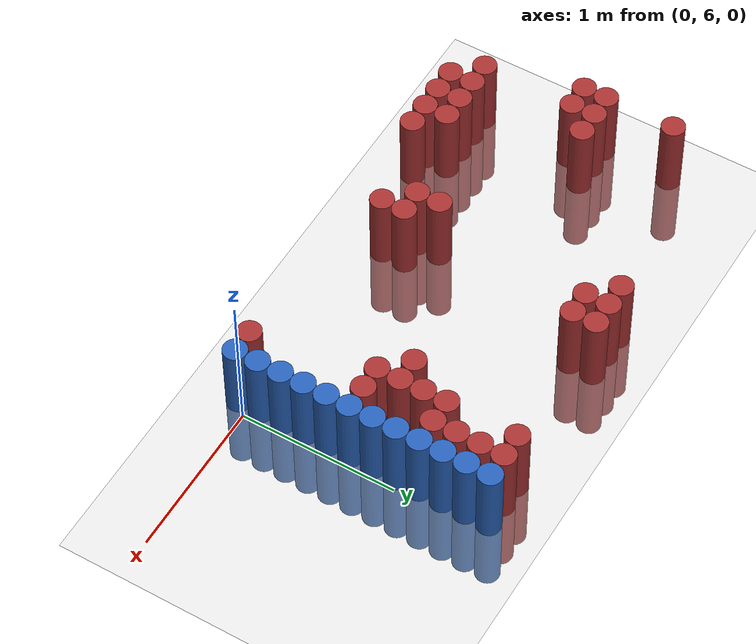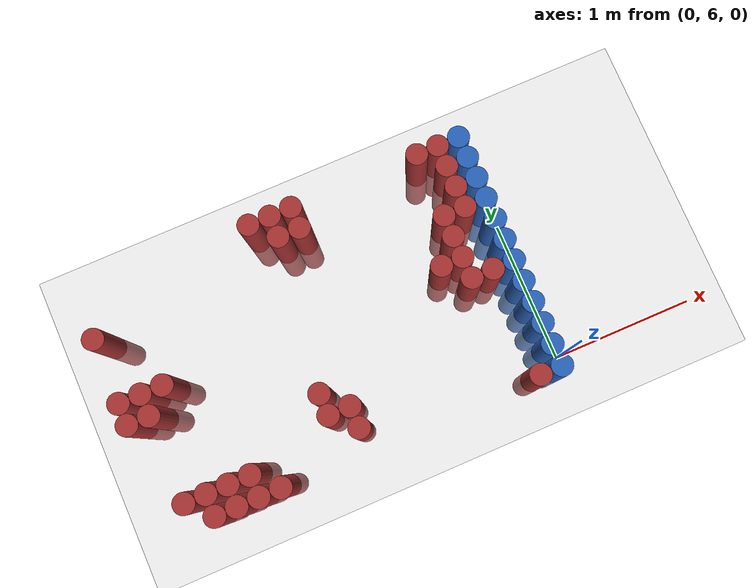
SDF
<sdf version="1.6">
 <world name="default">
  <model name="ground_plane">
   <static>1</static>
   <link name="link">
    <collision name="collision">
     <geometry><plane><normal>0 0 1</normal><size>100 100</size></plane></geometry>
     <surface><friction><ode><mu>100</mu><mu2>50</mu2></ode></friction></surface>
    </collision>
    <visual name="visual">
     <cast_shadows>0</cast_shadows>
     <geometry><plane><normal>0 0 1</normal><size>100 100</size></plane></geometry>
     <material>
      <script><uri>file://media/materials/scripts/gazebo.material</uri><name>Gazebo/Grey</name></script>
     </material>
    </visual>
   </link>
  </model>
  <model name="unit_cylinder_221">
   <static>1</static>
   <pose>-2.775000 6.675000 0.000000 0.000000 0.000000 0.000000</pose>
   <link name="link">
    <inertial>
     <mass>1</mass>
     <inertia><ixx>0.145833</ixx><ixy>0</ixy><ixz>0</ixz><iyy>0.145833</iyy><iyz>0</iyz><izz>0.125</izz></inertia>
    </inertial>
    <collision name="collision">
     <geometry><cylinder><radius>0.075000</radius><length>1</length></cylinder></geometry>
    </collision>
    <visual name="visual">
     <geometry><cylinder><radius>0.075000</radius><length>1</length></cylinder></geometry>
     <material>
      <ambient>0.648000 0.192000 0.192000 1</ambient>
      <diffuse>0.648000 0.192000 0.192000 1</diffuse>
     </material>
     <material>
      <script><name>Gazebo/Grey</name><uri>file://media/materials/scripts/gazebo.material</uri></script>
     </material>
    </visual>
   </link>
  </model>
  <model name="unit_cylinder_222">
   <static>1</static>
   <pose>-2.775000 6.825000 0.000000 0.000000 0.000000 0.000000</pose>
   <link name="link">
    <inertial>
     <mass>1</mass>
     <inertia><ixx>0.145833</ixx><ixy>0</ixy><ixz>0</ixz><iyy>0.145833</iyy><iyz>0</iyz><izz>0.125</izz></inertia>
    </inertial>
    <collision name="collision">
     <geometry><cylinder><radius>0.075000</radius><length>1</length></cylinder></geometry>
    </collision>
    <visual name="visual">
     <geometry><cylinder><radius>0.075000</radius><length>1</length></cylinder></geometry>
     <material>
      <ambient>0.648000 0.192000 0.192000 1</ambient>
      <diffuse>0.648000 0.192000 0.192000 1</diffuse>
     </material>
     <material>
      <script><name>Gazebo/Grey</name><uri>file://media/materials/scripts/gazebo.material</uri></script>
     </material>
    </visual>
   </link>
  </model>
  <model name="unit_cylinder_223">
   <static>1</static>
   <pose>-2.775000 7.275000 0.000000 0.000000 0.000000 0.000000</pose>
   <link name="link">
    <inertial>
     <mass>1</mass>
     <inertia><ixx>0.145833</ixx><ixy>0</ixy><ixz>0</ixz><iyy>0.145833</iyy><iyz>0</iyz><izz>0.125</izz></inertia>
    </inertial>
    <collision name="collision">
     <geometry><cylinder><radius>0.075000</radius><length>1</length></cylinder></geometry>
    </collision>
    <visual name="visual">
     <geometry><cylinder><radius>0.075000</radius><length>1</length></cylinder></geometry>
     <material>
      <ambient>0.648000 0.192000 0.192000 1</ambient>
      <diffuse>0.648000 0.192000 0.192000 1</diffuse>
     </material>
     <material>
      <script><name>Gazebo/Grey</name><uri>file://media/materials/scripts/gazebo.material</uri></script>
     </material>
    </visual>
   </link>
  </model>
  <model name="unit_cylinder_225">
   <static>1</static>
   <pose>-2.625000 6.075000 0.000000 0.000000 0.000000 0.000000</pose>
   <link name="link">
    <inertial>
     <mass>1</mass>
     <inertia><ixx>0.145833</ixx><ixy>0</ixy><ixz>0</ixz><iyy>0.145833</iyy><iyz>0</iyz><izz>0.125</izz></inertia>
    </inertial>
    <collision name="collision">
     <geometry><cylinder><radius>0.075000</radius><length>1</length></cylinder></geometry>
    </collision>
    <visual name="visual">
     <geometry><cylinder><radius>0.075000</radius><length>1</length></cylinder></geometry>
     <material>
      <ambient>0.648000 0.192000 0.192000 1</ambient>
      <diffuse>0.648000 0.192000 0.192000 1</diffuse>
     </material>
     <material>
      <script><name>Gazebo/Grey</name><uri>file://media/materials/scripts/gazebo.material</uri></script>
     </material>
    </visual>
   </link>
  </model>
  <model name="unit_cylinder_226">
   <static>1</static>
   <pose>-2.625000 6.675000 0.000000 0.000000 0.000000 0.000000</pose>
   <link name="link">
    <inertial>
     <mass>1</mass>
     <inertia><ixx>0.145833</ixx><ixy>0</ixy><ixz>0</ixz><iyy>0.145833</iyy><iyz>0</iyz><izz>0.125</izz></inertia>
    </inertial>
    <collision name="collision">
     <geometry><cylinder><radius>0.075000</radius><length>1</length></cylinder></geometry>
    </collision>
    <visual name="visual">
     <geometry><cylinder><radius>0.075000</radius><length>1</length></cylinder></geometry>
     <material>
      <ambient>0.648000 0.192000 0.192000 1</ambient>
      <diffuse>0.648000 0.192000 0.192000 1</diffuse>
     </material>
     <material>
      <script><name>Gazebo/Grey</name><uri>file://media/materials/scripts/gazebo.material</uri></script>
     </material>
    </visual>
   </link>
  </model>
  <model name="unit_cylinder_227">
   <static>1</static>
   <pose>-2.625000 6.825000 0.000000 0.000000 0.000000 0.000000</pose>
   <link name="link">
    <inertial>
     <mass>1</mass>
     <inertia><ixx>0.145833</ixx><ixy>0</ixy><ixz>0</ixz><iyy>0.145833</iyy><iyz>0</iyz><izz>0.125</izz></inertia>
    </inertial>
    <collision name="collision">
     <geometry><cylinder><radius>0.075000</radius><length>1</length></cylinder></geometry>
    </collision>
    <visual name="visual">
     <geometry><cylinder><radius>0.075000</radius><length>1</length></cylinder></geometry>
     <material>
      <ambient>0.648000 0.192000 0.192000 1</ambient>
      <diffuse>0.648000 0.192000 0.192000 1</diffuse>
     </material>
     <material>
      <script><name>Gazebo/Grey</name><uri>file://media/materials/scripts/gazebo.material</uri></script>
     </material>
    </visual>
   </link>
  </model>
  <model name="unit_cylinder_228">
   <static>1</static>
   <pose>-2.475000 5.925000 0.000000 0.000000 0.000000 0.000000</pose>
   <link name="link">
    <inertial>
     <mass>1</mass>
     <inertia><ixx>0.145833</ixx><ixy>0</ixy><ixz>0</ixz><iyy>0.145833</iyy><iyz>0</iyz><izz>0.125</izz></inertia>
    </inertial>
    <collision name="collision">
     <geometry><cylinder><radius>0.075000</radius><length>1</length></cylinder></geometry>
    </collision>
    <visual name="visual">
     <geometry><cylinder><radius>0.075000</radius><length>1</length></cylinder></geometry>
     <material>
      <ambient>0.648000 0.192000 0.192000 1</ambient>
      <diffuse>0.648000 0.192000 0.192000 1</diffuse>
     </material>
     <material>
      <script><name>Gazebo/Grey</name><uri>file://media/materials/scripts/gazebo.material</uri></script>
     </material>
    </visual>
   </link>
  </model>
  <model name="unit_cylinder_229">
   <static>1</static>
   <pose>-2.475000 6.075000 0.000000 0.000000 0.000000 0.000000</pose>
   <link name="link">
    <inertial>
     <mass>1</mass>
     <inertia><ixx>0.145833</ixx><ixy>0</ixy><ixz>0</ixz><iyy>0.145833</iyy><iyz>0</iyz><izz>0.125</izz></inertia>
    </inertial>
    <collision name="collision">
     <geometry><cylinder><radius>0.075000</radius><length>1</length></cylinder></geometry>
    </collision>
    <visual name="visual">
     <geometry><cylinder><radius>0.075000</radius><length>1</length></cylinder></geometry>
     <material>
      <ambient>0.648000 0.192000 0.192000 1</ambient>
      <diffuse>0.648000 0.192000 0.192000 1</diffuse>
     </material>
     <material>
      <script><name>Gazebo/Grey</name><uri>file://media/materials/scripts/gazebo.material</uri></script>
     </material>
    </visual>
   </link>
  </model>
  <model name="unit_cylinder_230">
   <static>1</static>
   <pose>-2.475000 6.825000 0.000000 0.000000 0.000000 0.000000</pose>
   <link name="link">
    <inertial>
     <mass>1</mass>
     <inertia><ixx>0.145833</ixx><ixy>0</ixy><ixz>0</ixz><iyy>0.145833</iyy><iyz>0</iyz><izz>0.125</izz></inertia>
    </inertial>
    <collision name="collision">
     <geometry><cylinder><radius>0.075000</radius><length>1</length></cylinder></geometry>
    </collision>
    <visual name="visual">
     <geometry><cylinder><radius>0.075000</radius><length>1</length></cylinder></geometry>
     <material>
      <ambient>0.648000 0.192000 0.192000 1</ambient>
      <diffuse>0.648000 0.192000 0.192000 1</diffuse>
     </material>
     <material>
      <script><name>Gazebo/Grey</name><uri>file://media/materials/scripts/gazebo.material</uri></script>
     </material>
    </visual>
   </link>
  </model>
  <model name="unit_cylinder_233">
   <static>1</static>
   <pose>-2.325000 5.925000 0.000000 0.000000 0.000000 0.000000</pose>
   <link name="link">
    <inertial>
     <mass>1</mass>
     <inertia><ixx>0.145833</ixx><ixy>0</ixy><ixz>0</ixz><iyy>0.145833</iyy><iyz>0</iyz><izz>0.125</izz></inertia>
    </inertial>
    <collision name="collision">
     <geometry><cylinder><radius>0.075000</radius><length>1</length></cylinder></geometry>
    </collision>
    <visual name="visual">
     <geometry><cylinder><radius>0.075000</radius><length>1</length></cylinder></geometry>
     <material>
      <ambient>0.648000 0.192000 0.192000 1</ambient>
      <diffuse>0.648000 0.192000 0.192000 1</diffuse>
     </material>
     <material>
      <script><name>Gazebo/Grey</name><uri>file://media/materials/scripts/gazebo.material</uri></script>
     </material>
    </visual>
   </link>
  </model>
  <model name="unit_cylinder_234">
   <static>1</static>
   <pose>-2.325000 6.075000 0.000000 0.000000 0.000000 0.000000</pose>
   <link name="link">
    <inertial>
     <mass>1</mass>
     <inertia><ixx>0.145833</ixx><ixy>0</ixy><ixz>0</ixz><iyy>0.145833</iyy><iyz>0</iyz><izz>0.125</izz></inertia>
    </inertial>
    <collision name="collision">
     <geometry><cylinder><radius>0.075000</radius><length>1</length></cylinder></geometry>
    </collision>
    <visual name="visual">
     <geometry><cylinder><radius>0.075000</radius><length>1</length></cylinder></geometry>
     <material>
      <ambient>0.648000 0.192000 0.192000 1</ambient>
      <diffuse>0.648000 0.192000 0.192000 1</diffuse>
     </material>
     <material>
      <script><name>Gazebo/Grey</name><uri>file://media/materials/scripts/gazebo.material</uri></script>
     </material>
    </visual>
   </link>
  </model>
  <model name="unit_cylinder_239">
   <static>1</static>
   <pose>-2.175000 5.925000 0.000000 0.000000 0.000000 0.000000</pose>
   <link name="link">
    <inertial>
     <mass>1</mass>
     <inertia><ixx>0.145833</ixx><ixy>0</ixy><ixz>0</ixz><iyy>0.145833</iyy><iyz>0</iyz><izz>0.125</izz></inertia>
    </inertial>
    <collision name="collision">
     <geometry><cylinder><radius>0.075000</radius><length>1</length></cylinder></geometry>
    </collision>
    <visual name="visual">
     <geometry><cylinder><radius>0.075000</radius><length>1</length></cylinder></geometry>
     <material>
      <ambient>0.648000 0.192000 0.192000 1</ambient>
      <diffuse>0.648000 0.192000 0.192000 1</diffuse>
     </material>
     <material>
      <script><name>Gazebo/Grey</name><uri>file://media/materials/scripts/gazebo.material</uri></script>
     </material>
    </visual>
   </link>
  </model>
  <model name="unit_cylinder_240">
   <static>1</static>
   <pose>-2.175000 6.075000 0.000000 0.000000 0.000000 0.000000</pose>
   <link name="link">
    <inertial>
     <mass>1</mass>
     <inertia><ixx>0.145833</ixx><ixy>0</ixy><ixz>0</ixz><iyy>0.145833</iyy><iyz>0</iyz><izz>0.125</izz></inertia>
    </inertial>
    <collision name="collision">
     <geometry><cylinder><radius>0.075000</radius><length>1</length></cylinder></geometry>
    </collision>
    <visual name="visual">
     <geometry><cylinder><radius>0.075000</radius><length>1</length></cylinder></geometry>
     <material>
      <ambient>0.648000 0.192000 0.192000 1</ambient>
      <diffuse>0.648000 0.192000 0.192000 1</diffuse>
     </material>
     <material>
      <script><name>Gazebo/Grey</name><uri>file://media/materials/scripts/gazebo.material</uri></script>
     </material>
    </visual>
   </link>
  </model>
  <model name="unit_cylinder_243">
   <static>1</static>
   <pose>-2.025000 5.925000 0.000000 0.000000 0.000000 0.000000</pose>
   <link name="link">
    <inertial>
     <mass>1</mass>
     <inertia><ixx>0.145833</ixx><ixy>0</ixy><ixz>0</ixz><iyy>0.145833</iyy><iyz>0</iyz><izz>0.125</izz></inertia>
    </inertial>
    <collision name="collision">
     <geometry><cylinder><radius>0.075000</radius><length>1</length></cylinder></geometry>
    </collision>
    <visual name="visual">
     <geometry><cylinder><radius>0.075000</radius><length>1</length></cylinder></geometry>
     <material>
      <ambient>0.648000 0.192000 0.192000 1</ambient>
      <diffuse>0.648000 0.192000 0.192000 1</diffuse>
     </material>
     <material>
      <script><name>Gazebo/Grey</name><uri>file://media/materials/scripts/gazebo.material</uri></script>
     </material>
    </visual>
   </link>
  </model>
  <model name="unit_cylinder_245">
   <static>1</static>
   <pose>-1.575000 6.225000 0.000000 0.000000 0.000000 0.000000</pose>
   <link name="link">
    <inertial>
     <mass>1</mass>
     <inertia><ixx>0.145833</ixx><ixy>0</ixy><ixz>0</ixz><iyy>0.145833</iyy><iyz>0</iyz><izz>0.125</izz></inertia>
    </inertial>
    <collision name="collision">
     <geometry><cylinder><radius>0.075000</radius><length>1</length></cylinder></geometry>
    </collision>
    <visual name="visual">
     <geometry><cylinder><radius>0.075000</radius><length>1</length></cylinder></geometry>
     <material>
      <ambient>0.648000 0.192000 0.192000 1</ambient>
      <diffuse>0.648000 0.192000 0.192000 1</diffuse>
     </material>
     <material>
      <script><name>Gazebo/Grey</name><uri>file://media/materials/scripts/gazebo.material</uri></script>
     </material>
    </visual>
   </link>
  </model>
  <model name="unit_cylinder_246">
   <static>1</static>
   <pose>-1.575000 6.375000 0.000000 0.000000 0.000000 0.000000</pose>
   <link name="link">
    <inertial>
     <mass>1</mass>
     <inertia><ixx>0.145833</ixx><ixy>0</ixy><ixz>0</ixz><iyy>0.145833</iyy><iyz>0</iyz><izz>0.125</izz></inertia>
    </inertial>
    <collision name="collision">
     <geometry><cylinder><radius>0.075000</radius><length>1</length></cylinder></geometry>
    </collision>
    <visual name="visual">
     <geometry><cylinder><radius>0.075000</radius><length>1</length></cylinder></geometry>
     <material>
      <ambient>0.648000 0.192000 0.192000 1</ambient>
      <diffuse>0.648000 0.192000 0.192000 1</diffuse>
     </material>
     <material>
      <script><name>Gazebo/Grey</name><uri>file://media/materials/scripts/gazebo.material</uri></script>
     </material>
    </visual>
   </link>
  </model>
  <model name="unit_cylinder_247">
   <static>1</static>
   <pose>-1.575000 7.575000 0.000000 0.000000 0.000000 0.000000</pose>
   <link name="link">
    <inertial>
     <mass>1</mass>
     <inertia><ixx>0.145833</ixx><ixy>0</ixy><ixz>0</ixz><iyy>0.145833</iyy><iyz>0</iyz><izz>0.125</izz></inertia>
    </inertial>
    <collision name="collision">
     <geometry><cylinder><radius>0.075000</radius><length>1</length></cylinder></geometry>
    </collision>
    <visual name="visual">
     <geometry><cylinder><radius>0.075000</radius><length>1</length></cylinder></geometry>
     <material>
      <ambient>0.648000 0.192000 0.192000 1</ambient>
      <diffuse>0.648000 0.192000 0.192000 1</diffuse>
     </material>
     <material>
      <script><name>Gazebo/Grey</name><uri>file://media/materials/scripts/gazebo.material</uri></script>
     </material>
    </visual>
   </link>
  </model>
  <model name="unit_cylinder_248">
   <static>1</static>
   <pose>-1.425000 6.075000 0.000000 0.000000 0.000000 0.000000</pose>
   <link name="link">
    <inertial>
     <mass>1</mass>
     <inertia><ixx>0.145833</ixx><ixy>0</ixy><ixz>0</ixz><iyy>0.145833</iyy><iyz>0</iyz><izz>0.125</izz></inertia>
    </inertial>
    <collision name="collision">
     <geometry><cylinder><radius>0.075000</radius><length>1</length></cylinder></geometry>
    </collision>
    <visual name="visual">
     <geometry><cylinder><radius>0.075000</radius><length>1</length></cylinder></geometry>
     <material>
      <ambient>0.648000 0.192000 0.192000 1</ambient>
      <diffuse>0.648000 0.192000 0.192000 1</diffuse>
     </material>
     <material>
      <script><name>Gazebo/Grey</name><uri>file://media/materials/scripts/gazebo.material</uri></script>
     </material>
    </visual>
   </link>
  </model>
  <model name="unit_cylinder_249">
   <static>1</static>
   <pose>-1.425000 6.225000 0.000000 0.000000 0.000000 0.000000</pose>
   <link name="link">
    <inertial>
     <mass>1</mass>
     <inertia><ixx>0.145833</ixx><ixy>0</ixy><ixz>0</ixz><iyy>0.145833</iyy><iyz>0</iyz><izz>0.125</izz></inertia>
    </inertial>
    <collision name="collision">
     <geometry><cylinder><radius>0.075000</radius><length>1</length></cylinder></geometry>
    </collision>
    <visual name="visual">
     <geometry><cylinder><radius>0.075000</radius><length>1</length></cylinder></geometry>
     <material>
      <ambient>0.648000 0.192000 0.192000 1</ambient>
      <diffuse>0.648000 0.192000 0.192000 1</diffuse>
     </material>
     <material>
      <script><name>Gazebo/Grey</name><uri>file://media/materials/scripts/gazebo.material</uri></script>
     </material>
    </visual>
   </link>
  </model>
  <model name="unit_cylinder_250">
   <static>1</static>
   <pose>-1.425000 7.425000 0.000000 0.000000 0.000000 0.000000</pose>
   <link name="link">
    <inertial>
     <mass>1</mass>
     <inertia><ixx>0.145833</ixx><ixy>0</ixy><ixz>0</ixz><iyy>0.145833</iyy><iyz>0</iyz><izz>0.125</izz></inertia>
    </inertial>
    <collision name="collision">
     <geometry><cylinder><radius>0.075000</radius><length>1</length></cylinder></geometry>
    </collision>
    <visual name="visual">
     <geometry><cylinder><radius>0.075000</radius><length>1</length></cylinder></geometry>
     <material>
      <ambient>0.648000 0.192000 0.192000 1</ambient>
      <diffuse>0.648000 0.192000 0.192000 1</diffuse>
     </material>
     <material>
      <script><name>Gazebo/Grey</name><uri>file://media/materials/scripts/gazebo.material</uri></script>
     </material>
    </visual>
   </link>
  </model>
  <model name="unit_cylinder_251">
   <static>1</static>
   <pose>-1.425000 7.575000 0.000000 0.000000 0.000000 0.000000</pose>
   <link name="link">
    <inertial>
     <mass>1</mass>
     <inertia><ixx>0.145833</ixx><ixy>0</ixy><ixz>0</ixz><iyy>0.145833</iyy><iyz>0</iyz><izz>0.125</izz></inertia>
    </inertial>
    <collision name="collision">
     <geometry><cylinder><radius>0.075000</radius><length>1</length></cylinder></geometry>
    </collision>
    <visual name="visual">
     <geometry><cylinder><radius>0.075000</radius><length>1</length></cylinder></geometry>
     <material>
      <ambient>0.648000 0.192000 0.192000 1</ambient>
      <diffuse>0.648000 0.192000 0.192000 1</diffuse>
     </material>
     <material>
      <script><name>Gazebo/Grey</name><uri>file://media/materials/scripts/gazebo.material</uri></script>
     </material>
    </visual>
   </link>
  </model>
  <model name="unit_cylinder_253">
   <static>1</static>
   <pose>-1.275000 7.425000 0.000000 0.000000 0.000000 0.000000</pose>
   <link name="link">
    <inertial>
     <mass>1</mass>
     <inertia><ixx>0.145833</ixx><ixy>0</ixy><ixz>0</ixz><iyy>0.145833</iyy><iyz>0</iyz><izz>0.125</izz></inertia>
    </inertial>
    <collision name="collision">
     <geometry><cylinder><radius>0.075000</radius><length>1</length></cylinder></geometry>
    </collision>
    <visual name="visual">
     <geometry><cylinder><radius>0.075000</radius><length>1</length></cylinder></geometry>
     <material>
      <ambient>0.648000 0.192000 0.192000 1</ambient>
      <diffuse>0.648000 0.192000 0.192000 1</diffuse>
     </material>
     <material>
      <script><name>Gazebo/Grey</name><uri>file://media/materials/scripts/gazebo.material</uri></script>
     </material>
    </visual>
   </link>
  </model>
  <model name="unit_cylinder_254">
   <static>1</static>
   <pose>-1.275000 7.575000 0.000000 0.000000 0.000000 0.000000</pose>
   <link name="link">
    <inertial>
     <mass>1</mass>
     <inertia><ixx>0.145833</ixx><ixy>0</ixy><ixz>0</ixz><iyy>0.145833</iyy><iyz>0</iyz><izz>0.125</izz></inertia>
    </inertial>
    <collision name="collision">
     <geometry><cylinder><radius>0.075000</radius><length>1</length></cylinder></geometry>
    </collision>
    <visual name="visual">
     <geometry><cylinder><radius>0.075000</radius><length>1</length></cylinder></geometry>
     <material>
      <ambient>0.648000 0.192000 0.192000 1</ambient>
      <diffuse>0.648000 0.192000 0.192000 1</diffuse>
     </material>
     <material>
      <script><name>Gazebo/Grey</name><uri>file://media/materials/scripts/gazebo.material</uri></script>
     </material>
    </visual>
   </link>
  </model>
  <model name="unit_cylinder_267">
   <static>1</static>
   <pose>-0.525000 6.825000 0.000000 0.000000 0.000000 0.000000</pose>
   <link name="link">
    <inertial>
     <mass>1</mass>
     <inertia><ixx>0.145833</ixx><ixy>0</ixy><ixz>0</ixz><iyy>0.145833</iyy><iyz>0</iyz><izz>0.125</izz></inertia>
    </inertial>
    <collision name="collision">
     <geometry><cylinder><radius>0.075000</radius><length>1</length></cylinder></geometry>
    </collision>
    <visual name="visual">
     <geometry><cylinder><radius>0.075000</radius><length>1</length></cylinder></geometry>
     <material>
      <ambient>0.648000 0.192000 0.192000 1</ambient>
      <diffuse>0.648000 0.192000 0.192000 1</diffuse>
     </material>
     <material>
      <script><name>Gazebo/Grey</name><uri>file://media/materials/scripts/gazebo.material</uri></script>
     </material>
    </visual>
   </link>
  </model>
  <model name="unit_cylinder_274">
   <static>1</static>
   <pose>-0.375000 6.675000 0.000000 0.000000 0.000000 0.000000</pose>
   <link name="link">
    <inertial>
     <mass>1</mass>
     <inertia><ixx>0.145833</ixx><ixy>0</ixy><ixz>0</ixz><iyy>0.145833</iyy><iyz>0</iyz><izz>0.125</izz></inertia>
    </inertial>
    <collision name="collision">
     <geometry><cylinder><radius>0.075000</radius><length>1</length></cylinder></geometry>
    </collision>
    <visual name="visual">
     <geometry><cylinder><radius>0.075000</radius><length>1</length></cylinder></geometry>
     <material>
      <ambient>0.648000 0.192000 0.192000 1</ambient>
      <diffuse>0.648000 0.192000 0.192000 1</diffuse>
     </material>
     <material>
      <script><name>Gazebo/Grey</name><uri>file://media/materials/scripts/gazebo.material</uri></script>
     </material>
    </visual>
   </link>
  </model>
  <model name="unit_cylinder_275">
   <static>1</static>
   <pose>-0.375000 6.825000 0.000000 0.000000 0.000000 0.000000</pose>
   <link name="link">
    <inertial>
     <mass>1</mass>
     <inertia><ixx>0.145833</ixx><ixy>0</ixy><ixz>0</ixz><iyy>0.145833</iyy><iyz>0</iyz><izz>0.125</izz></inertia>
    </inertial>
    <collision name="collision">
     <geometry><cylinder><radius>0.075000</radius><length>1</length></cylinder></geometry>
    </collision>
    <visual name="visual">
     <geometry><cylinder><radius>0.075000</radius><length>1</length></cylinder></geometry>
     <material>
      <ambient>0.648000 0.192000 0.192000 1</ambient>
      <diffuse>0.648000 0.192000 0.192000 1</diffuse>
     </material>
     <material>
      <script><name>Gazebo/Grey</name><uri>file://media/materials/scripts/gazebo.material</uri></script>
     </material>
    </visual>
   </link>
  </model>
  <model name="unit_cylinder_276">
   <static>1</static>
   <pose>-0.375000 6.975000 0.000000 0.000000 0.000000 0.000000</pose>
   <link name="link">
    <inertial>
     <mass>1</mass>
     <inertia><ixx>0.145833</ixx><ixy>0</ixy><ixz>0</ixz><iyy>0.145833</iyy><iyz>0</iyz><izz>0.125</izz></inertia>
    </inertial>
    <collision name="collision">
     <geometry><cylinder><radius>0.075000</radius><length>1</length></cylinder></geometry>
    </collision>
    <visual name="visual">
     <geometry><cylinder><radius>0.075000</radius><length>1</length></cylinder></geometry>
     <material>
      <ambient>0.648000 0.192000 0.192000 1</ambient>
      <diffuse>0.648000 0.192000 0.192000 1</diffuse>
     </material>
     <material>
      <script><name>Gazebo/Grey</name><uri>file://media/materials/scripts/gazebo.material</uri></script>
     </material>
    </visual>
   </link>
  </model>
  <model name="unit_cylinder_277">
   <static>1</static>
   <pose>-0.375000 7.125000 0.000000 0.000000 0.000000 0.000000</pose>
   <link name="link">
    <inertial>
     <mass>1</mass>
     <inertia><ixx>0.145833</ixx><ixy>0</ixy><ixz>0</ixz><iyy>0.145833</iyy><iyz>0</iyz><izz>0.125</izz></inertia>
    </inertial>
    <collision name="collision">
     <geometry><cylinder><radius>0.075000</radius><length>1</length></cylinder></geometry>
    </collision>
    <visual name="visual">
     <geometry><cylinder><radius>0.075000</radius><length>1</length></cylinder></geometry>
     <material>
      <ambient>0.648000 0.192000 0.192000 1</ambient>
      <diffuse>0.648000 0.192000 0.192000 1</diffuse>
     </material>
     <material>
      <script><name>Gazebo/Grey</name><uri>file://media/materials/scripts/gazebo.material</uri></script>
     </material>
    </visual>
   </link>
  </model>
  <model name="unit_cylinder_278">
   <static>1</static>
   <pose>-0.375000 7.575000 0.000000 0.000000 0.000000 0.000000</pose>
   <link name="link">
    <inertial>
     <mass>1</mass>
     <inertia><ixx>0.145833</ixx><ixy>0</ixy><ixz>0</ixz><iyy>0.145833</iyy><iyz>0</iyz><izz>0.125</izz></inertia>
    </inertial>
    <collision name="collision">
     <geometry><cylinder><radius>0.075000</radius><length>1</length></cylinder></geometry>
    </collision>
    <visual name="visual">
     <geometry><cylinder><radius>0.075000</radius><length>1</length></cylinder></geometry>
     <material>
      <ambient>0.648000 0.192000 0.192000 1</ambient>
      <diffuse>0.648000 0.192000 0.192000 1</diffuse>
     </material>
     <material>
      <script><name>Gazebo/Grey</name><uri>file://media/materials/scripts/gazebo.material</uri></script>
     </material>
    </visual>
   </link>
  </model>
  <model name="unit_cylinder_285">
   <static>1</static>
   <pose>-0.225000 5.925000 0.000000 0.000000 0.000000 0.000000</pose>
   <link name="link">
    <inertial>
     <mass>1</mass>
     <inertia><ixx>0.145833</ixx><ixy>0</ixy><ixz>0</ixz><iyy>0.145833</iyy><iyz>0</iyz><izz>0.125</izz></inertia>
    </inertial>
    <collision name="collision">
     <geometry><cylinder><radius>0.075000</radius><length>1</length></cylinder></geometry>
    </collision>
    <visual name="visual">
     <geometry><cylinder><radius>0.075000</radius><length>1</length></cylinder></geometry>
     <material>
      <ambient>0.648000 0.192000 0.192000 1</ambient>
      <diffuse>0.648000 0.192000 0.192000 1</diffuse>
     </material>
     <material>
      <script><name>Gazebo/Grey</name><uri>file://media/materials/scripts/gazebo.material</uri></script>
     </material>
    </visual>
   </link>
  </model>
  <model name="unit_cylinder_286">
   <static>1</static>
   <pose>-0.225000 6.675000 0.000000 0.000000 0.000000 0.000000</pose>
   <link name="link">
    <inertial>
     <mass>1</mass>
     <inertia><ixx>0.145833</ixx><ixy>0</ixy><ixz>0</ixz><iyy>0.145833</iyy><iyz>0</iyz><izz>0.125</izz></inertia>
    </inertial>
    <collision name="collision">
     <geometry><cylinder><radius>0.075000</radius><length>1</length></cylinder></geometry>
    </collision>
    <visual name="visual">
     <geometry><cylinder><radius>0.075000</radius><length>1</length></cylinder></geometry>
     <material>
      <ambient>0.648000 0.192000 0.192000 1</ambient>
      <diffuse>0.648000 0.192000 0.192000 1</diffuse>
     </material>
     <material>
      <script><name>Gazebo/Grey</name><uri>file://media/materials/scripts/gazebo.material</uri></script>
     </material>
    </visual>
   </link>
  </model>
  <model name="unit_cylinder_287">
   <static>1</static>
   <pose>-0.225000 7.125000 0.000000 0.000000 0.000000 0.000000</pose>
   <link name="link">
    <inertial>
     <mass>1</mass>
     <inertia><ixx>0.145833</ixx><ixy>0</ixy><ixz>0</ixz><iyy>0.145833</iyy><iyz>0</iyz><izz>0.125</izz></inertia>
    </inertial>
    <collision name="collision">
     <geometry><cylinder><radius>0.075000</radius><length>1</length></cylinder></geometry>
    </collision>
    <visual name="visual">
     <geometry><cylinder><radius>0.075000</radius><length>1</length></cylinder></geometry>
     <material>
      <ambient>0.648000 0.192000 0.192000 1</ambient>
      <diffuse>0.648000 0.192000 0.192000 1</diffuse>
     </material>
     <material>
      <script><name>Gazebo/Grey</name><uri>file://media/materials/scripts/gazebo.material</uri></script>
     </material>
    </visual>
   </link>
  </model>
  <model name="unit_cylinder_288">
   <static>1</static>
   <pose>-0.225000 7.275000 0.000000 0.000000 0.000000 0.000000</pose>
   <link name="link">
    <inertial>
     <mass>1</mass>
     <inertia><ixx>0.145833</ixx><ixy>0</ixy><ixz>0</ixz><iyy>0.145833</iyy><iyz>0</iyz><izz>0.125</izz></inertia>
    </inertial>
    <collision name="collision">
     <geometry><cylinder><radius>0.075000</radius><length>1</length></cylinder></geometry>
    </collision>
    <visual name="visual">
     <geometry><cylinder><radius>0.075000</radius><length>1</length></cylinder></geometry>
     <material>
      <ambient>0.648000 0.192000 0.192000 1</ambient>
      <diffuse>0.648000 0.192000 0.192000 1</diffuse>
     </material>
     <material>
      <script><name>Gazebo/Grey</name><uri>file://media/materials/scripts/gazebo.material</uri></script>
     </material>
    </visual>
   </link>
  </model>
  <model name="unit_cylinder_289">
   <static>1</static>
   <pose>-0.225000 7.425000 0.000000 0.000000 0.000000 0.000000</pose>
   <link name="link">
    <inertial>
     <mass>1</mass>
     <inertia><ixx>0.145833</ixx><ixy>0</ixy><ixz>0</ixz><iyy>0.145833</iyy><iyz>0</iyz><izz>0.125</izz></inertia>
    </inertial>
    <collision name="collision">
     <geometry><cylinder><radius>0.075000</radius><length>1</length></cylinder></geometry>
    </collision>
    <visual name="visual">
     <geometry><cylinder><radius>0.075000</radius><length>1</length></cylinder></geometry>
     <material>
      <ambient>0.648000 0.192000 0.192000 1</ambient>
      <diffuse>0.648000 0.192000 0.192000 1</diffuse>
     </material>
     <material>
      <script><name>Gazebo/Grey</name><uri>file://media/materials/scripts/gazebo.material</uri></script>
     </material>
    </visual>
   </link>
  </model>
  <model name="unit_cylinder_290">
   <static>1</static>
   <pose>-0.225000 7.575000 0.000000 0.000000 0.000000 0.000000</pose>
   <link name="link">
    <inertial>
     <mass>1</mass>
     <inertia><ixx>0.145833</ixx><ixy>0</ixy><ixz>0</ixz><iyy>0.145833</iyy><iyz>0</iyz><izz>0.125</izz></inertia>
    </inertial>
    <collision name="collision">
     <geometry><cylinder><radius>0.075000</radius><length>1</length></cylinder></geometry>
    </collision>
    <visual name="visual">
     <geometry><cylinder><radius>0.075000</radius><length>1</length></cylinder></geometry>
     <material>
      <ambient>0.648000 0.192000 0.192000 1</ambient>
      <diffuse>0.648000 0.192000 0.192000 1</diffuse>
     </material>
     <material>
      <script><name>Gazebo/Grey</name><uri>file://media/materials/scripts/gazebo.material</uri></script>
     </material>
    </visual>
   </link>
  </model>
  <model name="unit_cylinder_304">
   <static>1</static>
   <pose>-0.075000 5.925000 0.000000 0.000000 0.000000 0.000000</pose>
   <link name="link">
    <inertial>
     <mass>1</mass>
     <inertia><ixx>0.145833</ixx><ixy>0</ixy><ixz>0</ixz><iyy>0.145833</iyy><iyz>0</iyz><izz>0.125</izz></inertia>
    </inertial>
    <collision name="collision">
     <geometry><cylinder><radius>0.075000</radius><length>1</length></cylinder></geometry>
    </collision>
    <visual name="visual">
     <geometry><cylinder><radius>0.075000</radius><length>1</length></cylinder></geometry>
     <material>
      <ambient>0.152000 0.379000 0.720000 1</ambient>
      <diffuse>0.152000 0.379000 0.720000 1</diffuse>
     </material>
     <material>
      <script><name>Gazebo/Grey</name><uri>file://media/materials/scripts/gazebo.material</uri></script>
     </material>
    </visual>
   </link>
  </model>
  <model name="unit_cylinder_305">
   <static>1</static>
   <pose>-0.075000 6.075000 0.000000 0.000000 0.000000 0.000000</pose>
   <link name="link">
    <inertial>
     <mass>1</mass>
     <inertia><ixx>0.145833</ixx><ixy>0</ixy><ixz>0</ixz><iyy>0.145833</iyy><iyz>0</iyz><izz>0.125</izz></inertia>
    </inertial>
    <collision name="collision">
     <geometry><cylinder><radius>0.075000</radius><length>1</length></cylinder></geometry>
    </collision>
    <visual name="visual">
     <geometry><cylinder><radius>0.075000</radius><length>1</length></cylinder></geometry>
     <material>
      <ambient>0.152000 0.379000 0.720000 1</ambient>
      <diffuse>0.152000 0.379000 0.720000 1</diffuse>
     </material>
     <material>
      <script><name>Gazebo/Grey</name><uri>file://media/materials/scripts/gazebo.material</uri></script>
     </material>
    </visual>
   </link>
  </model>
  <model name="unit_cylinder_306">
   <static>1</static>
   <pose>-0.075000 6.225000 0.000000 0.000000 0.000000 0.000000</pose>
   <link name="link">
    <inertial>
     <mass>1</mass>
     <inertia><ixx>0.145833</ixx><ixy>0</ixy><ixz>0</ixz><iyy>0.145833</iyy><iyz>0</iyz><izz>0.125</izz></inertia>
    </inertial>
    <collision name="collision">
     <geometry><cylinder><radius>0.075000</radius><length>1</length></cylinder></geometry>
    </collision>
    <visual name="visual">
     <geometry><cylinder><radius>0.075000</radius><length>1</length></cylinder></geometry>
     <material>
      <ambient>0.152000 0.379000 0.720000 1</ambient>
      <diffuse>0.152000 0.379000 0.720000 1</diffuse>
     </material>
     <material>
      <script><name>Gazebo/Grey</name><uri>file://media/materials/scripts/gazebo.material</uri></script>
     </material>
    </visual>
   </link>
  </model>
  <model name="unit_cylinder_307">
   <static>1</static>
   <pose>-0.075000 6.375000 0.000000 0.000000 0.000000 0.000000</pose>
   <link name="link">
    <inertial>
     <mass>1</mass>
     <inertia><ixx>0.145833</ixx><ixy>0</ixy><ixz>0</ixz><iyy>0.145833</iyy><iyz>0</iyz><izz>0.125</izz></inertia>
    </inertial>
    <collision name="collision">
     <geometry><cylinder><radius>0.075000</radius><length>1</length></cylinder></geometry>
    </collision>
    <visual name="visual">
     <geometry><cylinder><radius>0.075000</radius><length>1</length></cylinder></geometry>
     <material>
      <ambient>0.152000 0.379000 0.720000 1</ambient>
      <diffuse>0.152000 0.379000 0.720000 1</diffuse>
     </material>
     <material>
      <script><name>Gazebo/Grey</name><uri>file://media/materials/scripts/gazebo.material</uri></script>
     </material>
    </visual>
   </link>
  </model>
  <model name="unit_cylinder_308">
   <static>1</static>
   <pose>-0.075000 6.525000 0.000000 0.000000 0.000000 0.000000</pose>
   <link name="link">
    <inertial>
     <mass>1</mass>
     <inertia><ixx>0.145833</ixx><ixy>0</ixy><ixz>0</ixz><iyy>0.145833</iyy><iyz>0</iyz><izz>0.125</izz></inertia>
    </inertial>
    <collision name="collision">
     <geometry><cylinder><radius>0.075000</radius><length>1</length></cylinder></geometry>
    </collision>
    <visual name="visual">
     <geometry><cylinder><radius>0.075000</radius><length>1</length></cylinder></geometry>
     <material>
      <ambient>0.152000 0.379000 0.720000 1</ambient>
      <diffuse>0.152000 0.379000 0.720000 1</diffuse>
     </material>
     <material>
      <script><name>Gazebo/Grey</name><uri>file://media/materials/scripts/gazebo.material</uri></script>
     </material>
    </visual>
   </link>
  </model>
  <model name="unit_cylinder_309">
   <static>1</static>
   <pose>-0.075000 6.675000 0.000000 0.000000 0.000000 0.000000</pose>
   <link name="link">
    <inertial>
     <mass>1</mass>
     <inertia><ixx>0.145833</ixx><ixy>0</ixy><ixz>0</ixz><iyy>0.145833</iyy><iyz>0</iyz><izz>0.125</izz></inertia>
    </inertial>
    <collision name="collision">
     <geometry><cylinder><radius>0.075000</radius><length>1</length></cylinder></geometry>
    </collision>
    <visual name="visual">
     <geometry><cylinder><radius>0.075000</radius><length>1</length></cylinder></geometry>
     <material>
      <ambient>0.152000 0.379000 0.720000 1</ambient>
      <diffuse>0.152000 0.379000 0.720000 1</diffuse>
     </material>
     <material>
      <script><name>Gazebo/Grey</name><uri>file://media/materials/scripts/gazebo.material</uri></script>
     </material>
    </visual>
   </link>
  </model>
  <model name="unit_cylinder_310">
   <static>1</static>
   <pose>-0.075000 6.825000 0.000000 0.000000 0.000000 0.000000</pose>
   <link name="link">
    <inertial>
     <mass>1</mass>
     <inertia><ixx>0.145833</ixx><ixy>0</ixy><ixz>0</ixz><iyy>0.145833</iyy><iyz>0</iyz><izz>0.125</izz></inertia>
    </inertial>
    <collision name="collision">
     <geometry><cylinder><radius>0.075000</radius><length>1</length></cylinder></geometry>
    </collision>
    <visual name="visual">
     <geometry><cylinder><radius>0.075000</radius><length>1</length></cylinder></geometry>
     <material>
      <ambient>0.152000 0.379000 0.720000 1</ambient>
      <diffuse>0.152000 0.379000 0.720000 1</diffuse>
     </material>
     <material>
      <script><name>Gazebo/Grey</name><uri>file://media/materials/scripts/gazebo.material</uri></script>
     </material>
    </visual>
   </link>
  </model>
  <model name="unit_cylinder_311">
   <static>1</static>
   <pose>-0.075000 6.975000 0.000000 0.000000 0.000000 0.000000</pose>
   <link name="link">
    <inertial>
     <mass>1</mass>
     <inertia><ixx>0.145833</ixx><ixy>0</ixy><ixz>0</ixz><iyy>0.145833</iyy><iyz>0</iyz><izz>0.125</izz></inertia>
    </inertial>
    <collision name="collision">
     <geometry><cylinder><radius>0.075000</radius><length>1</length></cylinder></geometry>
    </collision>
    <visual name="visual">
     <geometry><cylinder><radius>0.075000</radius><length>1</length></cylinder></geometry>
     <material>
      <ambient>0.152000 0.379000 0.720000 1</ambient>
      <diffuse>0.152000 0.379000 0.720000 1</diffuse>
     </material>
     <material>
      <script><name>Gazebo/Grey</name><uri>file://media/materials/scripts/gazebo.material</uri></script>
     </material>
    </visual>
   </link>
  </model>
  <model name="unit_cylinder_312">
   <static>1</static>
   <pose>-0.075000 7.125000 0.000000 0.000000 0.000000 0.000000</pose>
   <link name="link">
    <inertial>
     <mass>1</mass>
     <inertia><ixx>0.145833</ixx><ixy>0</ixy><ixz>0</ixz><iyy>0.145833</iyy><iyz>0</iyz><izz>0.125</izz></inertia>
    </inertial>
    <collision name="collision">
     <geometry><cylinder><radius>0.075000</radius><length>1</length></cylinder></geometry>
    </collision>
    <visual name="visual">
     <geometry><cylinder><radius>0.075000</radius><length>1</length></cylinder></geometry>
     <material>
      <ambient>0.152000 0.379000 0.720000 1</ambient>
      <diffuse>0.152000 0.379000 0.720000 1</diffuse>
     </material>
     <material>
      <script><name>Gazebo/Grey</name><uri>file://media/materials/scripts/gazebo.material</uri></script>
     </material>
    </visual>
   </link>
  </model>
  <model name="unit_cylinder_313">
   <static>1</static>
   <pose>-0.075000 7.275000 0.000000 0.000000 0.000000 0.000000</pose>
   <link name="link">
    <inertial>
     <mass>1</mass>
     <inertia><ixx>0.145833</ixx><ixy>0</ixy><ixz>0</ixz><iyy>0.145833</iyy><iyz>0</iyz><izz>0.125</izz></inertia>
    </inertial>
    <collision name="collision">
     <geometry><cylinder><radius>0.075000</radius><length>1</length></cylinder></geometry>
    </collision>
    <visual name="visual">
     <geometry><cylinder><radius>0.075000</radius><length>1</length></cylinder></geometry>
     <material>
      <ambient>0.152000 0.379000 0.720000 1</ambient>
      <diffuse>0.152000 0.379000 0.720000 1</diffuse>
     </material>
     <material>
      <script><name>Gazebo/Grey</name><uri>file://media/materials/scripts/gazebo.material</uri></script>
     </material>
    </visual>
   </link>
  </model>
  <model name="unit_cylinder_314">
   <static>1</static>
   <pose>-0.075000 7.425000 0.000000 0.000000 0.000000 0.000000</pose>
   <link name="link">
    <inertial>
     <mass>1</mass>
     <inertia><ixx>0.145833</ixx><ixy>0</ixy><ixz>0</ixz><iyy>0.145833</iyy><iyz>0</iyz><izz>0.125</izz></inertia>
    </inertial>
    <collision name="collision">
     <geometry><cylinder><radius>0.075000</radius><length>1</length></cylinder></geometry>
    </collision>
    <visual name="visual">
     <geometry><cylinder><radius>0.075000</radius><length>1</length></cylinder></geometry>
     <material>
      <ambient>0.152000 0.379000 0.720000 1</ambient>
      <diffuse>0.152000 0.379000 0.720000 1</diffuse>
     </material>
     <material>
      <script><name>Gazebo/Grey</name><uri>file://media/materials/scripts/gazebo.material</uri></script>
     </material>
    </visual>
   </link>
  </model>
  <model name="unit_cylinder_315">
   <static>1</static>
   <pose>-0.075000 7.575000 0.000000 0.000000 0.000000 0.000000</pose>
   <link name="link">
    <inertial>
     <mass>1</mass>
     <inertia><ixx>0.145833</ixx><ixy>0</ixy><ixz>0</ixz><iyy>0.145833</iyy><iyz>0</iyz><izz>0.125</izz></inertia>
    </inertial>
    <collision name="collision">
     <geometry><cylinder><radius>0.075000</radius><length>1</length></cylinder></geometry>
    </collision>
    <visual name="visual">
     <geometry><cylinder><radius>0.075000</radius><length>1</length></cylinder></geometry>
     <material>
      <ambient>0.152000 0.379000 0.720000 1</ambient>
      <diffuse>0.152000 0.379000 0.720000 1</diffuse>
     </material>
     <material>
      <script><name>Gazebo/Grey</name><uri>file://media/materials/scripts/gazebo.material</uri></script>
     </material>
    </visual>
   </link>
  </model>
 </world>
</sdf>
